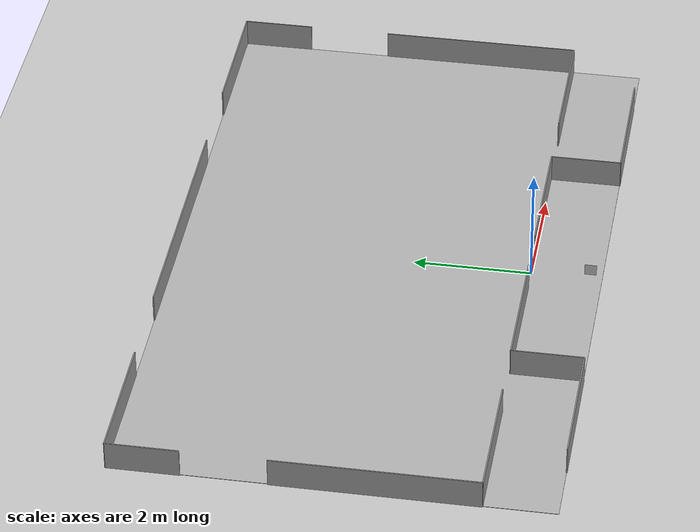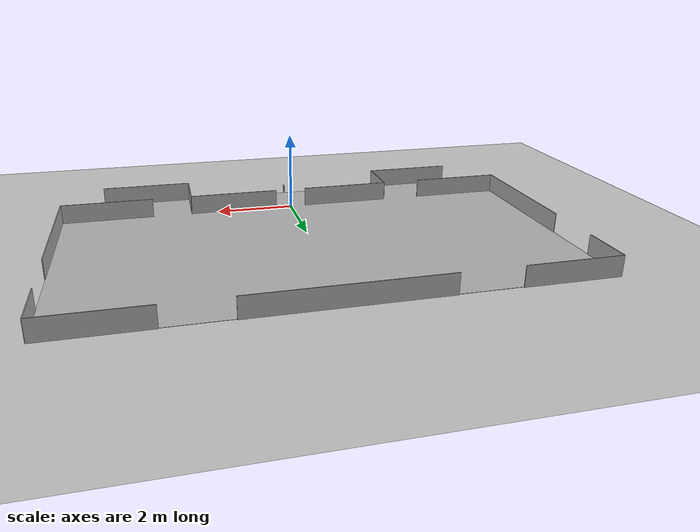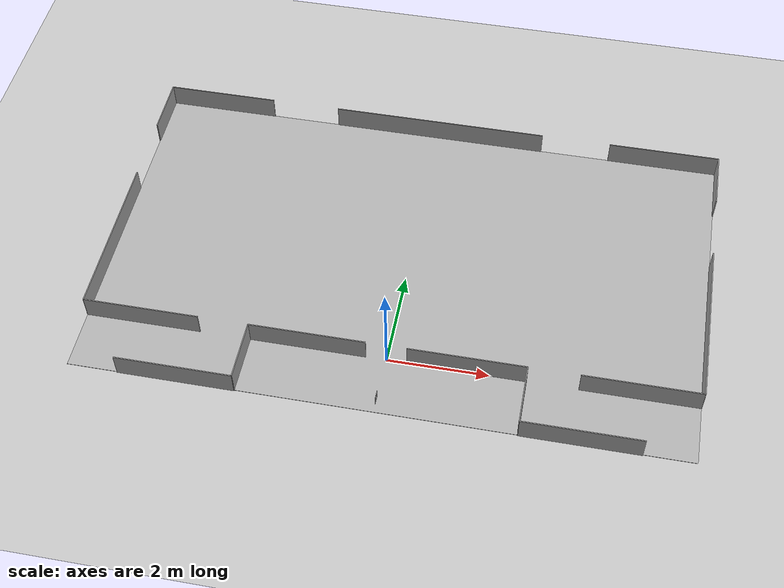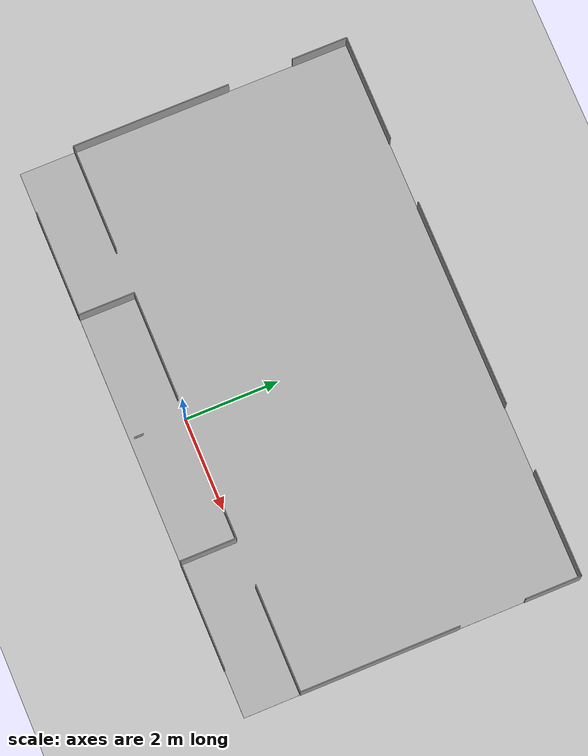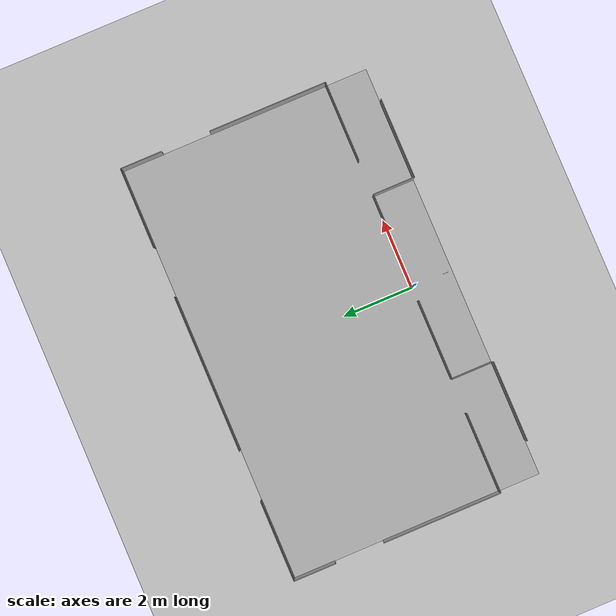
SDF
<sdf version="1.4">
 <world name="LLSF">
  <physics type="ode">
   <max_step_size>0.004</max_step_size>
   <real_time_factor>1</real_time_factor>
   <real_time_update_rate>300</real_time_update_rate>
  </physics>
  <include><uri>model://ground_plane</uri></include>
  <include><uri>model://sun</uri></include>
  <include><uri>model://german_open_field</uri></include>
  <include><name>tag_01</name><uri>model://tag</uri><pose>0 -1 0.2 0 0 0</pose></include>
  <include><name>tag_02</name><uri>model://tag</uri><pose>0 -1 0.2 0 0 0</pose></include>
  <include><name>tag_17</name><uri>model://tag</uri><pose>0 -1 0.2 0 0 0</pose></include>
  <include><name>tag_18</name><uri>model://tag</uri><pose>0 -1 0.2 0 0 0</pose></include>
  <include><name>tag_33</name><uri>model://tag</uri><pose>0 -1 0.2 0 0 0</pose></include>
  <include><name>tag_34</name><uri>model://tag</uri><pose>0 -1 0.2 0 0 0</pose></include>
  <include><name>tag_177</name><uri>model://tag</uri><pose>0 -1 0.2 0 0 0</pose></include>
  <include><name>tag_178</name><uri>model://tag</uri><pose>0 -1 0.2 0 0 0</pose></include>
  <include><name>tag_65</name><uri>model://tag</uri><pose>0 -1 0.2 0 0 0</pose></include>
  <include><name>tag_66</name><uri>model://tag</uri><pose>0 -1 0.2 0 0 0</pose></include>
  <include><name>tag_81</name><uri>model://tag</uri><pose>0 -1 0.2 0 0 0</pose></include>
  <include><name>tag_82</name><uri>model://tag</uri><pose>0 -1 0.2 0 0 0</pose></include>
  <include><name>tag_97</name><uri>model://tag</uri><pose>0 -1 0.2 0 0 0</pose></include>
  <include><name>tag_98</name><uri>model://tag</uri><pose>0 -1 0.2 0 0 0</pose></include>
  <include><name>tag_113</name><uri>model://tag</uri><pose>0 -1 0.2 0 0 0</pose></include>
  <include><name>tag_114</name><uri>model://tag</uri><pose>0 -1 0.2 0 0 0</pose></include>
  <include><name>tag_129</name><uri>model://tag</uri><pose>0 -1 0.2 0 0 0</pose></include>
  <include><name>tag_130</name><uri>model://tag</uri><pose>0 -1 0.2 0 0 0</pose></include>
  <include><name>tag_145</name><uri>model://tag</uri><pose>0 -1 0.2 0 0 0</pose></include>
  <include><name>tag_146</name><uri>model://tag</uri><pose>0 -1 0.2 0 0 0</pose></include>
  <include><name>tag_161</name><uri>model://tag</uri><pose>0 -1 0.2 0 0 0</pose></include>
  <include><name>tag_162</name><uri>model://tag</uri><pose>0 -1 0.2 0 0 0</pose></include>
  <include><name>tag_49</name><uri>model://tag</uri><pose>0 -1 0.2 0 0 0</pose></include>
  <include><name>tag_50</name><uri>model://tag</uri><pose>0 -1 0.2 0 0 0</pose></include>
  <plugin name="llsf_refbox_comm" filename="libllsf_refbox_comm.so"/>
  <plugin name="timesync" filename="libtimesync.so"/>
  <plugin name="mps_placement" filename="libmps_placement.so"/>
 </world>
</sdf>

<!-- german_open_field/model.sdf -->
<sdf version="1.5">
  <model name="German Open Logistics League Field">
    <pose>0 2.5 0 0 0 0</pose>
    <static>true</static>
    <link name="field">
      <pose>0 0 0.01 0 0 0</pose>
      <collision name="collision">
        <geometry>
          <plane>
            <normal>0 0 1</normal>
            <size>12 7</size>
          </plane>
        </geometry>
        <surface>
          <friction>
            <ode>
              <mu>100</mu>
              <mu2>50</mu2>
            </ode>
          </friction>
        </surface>
      </collision>
      <visual name="carpet">
        <pose>0 -0.1 0 0 0 0</pose>
        <cast_shadows>false</cast_shadows>
        <geometry>
          <plane>
            <normal>0 0 1</normal>
            <size>12 7.2</size>
          </plane>
        </geometry>
        <material>
          <script>
            <uri>model://german_open_field/materials/scripts/</uri>
            <uri>model://german_open_field/materials/textures/</uri>
            <name>Logistics_League_Field/Image</name>
          </script>
        </material>
      </visual>
    </link>

    <link name="wall_bottom_middle_left">
      <pose>-1.55 -2.5 0.25 0 0 1.570796327</pose>
      <visual name="wall_bottom_middle_left-visual">
        <geometry>
          <box>
			<size>.02 2.3 .5</size>
          </box>
        </geometry>
        <cast_shadows>false</cast_shadows>
        <material>
	  <script>
	    <uri>file://media/materials/scripts/gazebo.material</uri>
	    <name>Gazebo/Grey</name>
	  </script>
        </material>
      </visual>
      <collision name="wall_bottom_middle_left-collision">
        <geometry>
		    <box>
			  <size>.02 2.3 .5</size>
		    </box>
        </geometry>
      </collision>
    </link>

    <link name="wall_bottom_middle_left_down">
      <pose>-2.7 -3.1 0.25 0 0 0</pose>
      <visual name="wall_bottom_middle_left_down-visual">
        <geometry>
          <box>
			<size>.02 1.2 .5</size>
          </box>
        </geometry>
        <cast_shadows>false</cast_shadows>
        <material>
	  <script>
	    <uri>file://media/materials/scripts/gazebo.material</uri>
	    <name>Gazebo/Grey</name>
	  </script>
        </material>
      </visual>
      <collision name="wall_bottom_middle_left_down-collision">
        <geometry>
		    <box>
			  <size>.02 1.2 .5</size>
		    </box>
        </geometry>
      </collision>
    </link>

    <link name="wall_bottom_middle_left_outer">
      <pose>-3.85 -3.7 0.25 0 0 1.570796327</pose>
      <visual name="wall_bottom_middle_left_outer-visual">
        <geometry>
          <box>
			<size>.02 2.3 .5</size>
          </box>
        </geometry>
        <cast_shadows>false</cast_shadows>
        <material>
	  <script>
	    <uri>file://media/materials/scripts/gazebo.material</uri>
	    <name>Gazebo/Grey</name>
	  </script>
        </material>
      </visual>
      <collision name="wall_bottom_middle_left_outer-collision">
        <geometry>
		    <box>
			  <size>.02 2.3 .5</size>
		    </box>
        </geometry>
      </collision>
    </link>

    <link name="wall_bottom_left">
      <pose>-4.85 -2.5 0.25 0 0 1.570796327</pose>
      <visual name="wall_bottom_left-visual">
        <geometry>
          <box>
			<size>.02 2.3 .5</size>
          </box>
        </geometry>
        <cast_shadows>false</cast_shadows>
        <material>
	  <script>
	    <uri>file://media/materials/scripts/gazebo.material</uri>
	    <name>Gazebo/Grey</name>
	  </script>
        </material>
      </visual>
      <collision name="wall_bottom_left-collision">
        <geometry>
		    <box>
			  <size>.02 2.3 .5</size>
		    </box>
        </geometry>
      </collision>
    </link>

    <link name="wall_bottom_middle_right">
      <pose>1.55 -2.5 0.25 0 0 1.570796327</pose>
      <visual name="wall_bottom_middle_right-visual">
        <geometry>
          <box>
			<size>.02 2.3 .5</size>
          </box>
        </geometry>
        <cast_shadows>false</cast_shadows>
        <material>
	  <script>
	    <uri>file://media/materials/scripts/gazebo.material</uri>
	    <name>Gazebo/Grey</name>
	  </script>
        </material>
      </visual>
      <collision name="wall_bottom_middle_right-collision">
        <geometry>
		    <box>
			  <size>.02 2.3 .5</size>
		    </box>
        </geometry>
      </collision>
    </link>

    <link name="wall_bottom_middle_right_down">
      <pose>2.7 -3.1 0.25 0 0 0</pose>
      <visual name="wall_bottom_middle_right_down-visual">
        <geometry>
          <box>
			<size>.02 1.2 .5</size>
          </box>
        </geometry>
        <cast_shadows>false</cast_shadows>
        <material>
	  <script>
	    <uri>file://media/materials/scripts/gazebo.material</uri>
	    <name>Gazebo/Grey</name>
	  </script>
        </material>
      </visual>
      <collision name="wall_bottom_middle_right_down-collision">
        <geometry>
		    <box>
			  <size>.02 1.2 .5</size>
		    </box>
        </geometry>
      </collision>
    </link>

    <link name="wall_bottom_middle_right_outer">
      <pose>3.85 -3.7 0.25 0 0 1.570796327</pose>
      <visual name="wall_bottom_middle_right_outer-visual">
        <geometry>
          <box>
			<size>.02 2.3 .5</size>
          </box>
        </geometry>
        <cast_shadows>false</cast_shadows>
        <material>
	  <script>
	    <uri>file://media/materials/scripts/gazebo.material</uri>
	    <name>Gazebo/Grey</name>
	  </script>
        </material>
      </visual>
      <collision name="wall_bottom_middle_right_outer-collision">
        <geometry>
		    <box>
			  <size>.02 2.3 .5</size>
		    </box>
        </geometry>
      </collision>
    </link>

    <link name="wall_bottom_right">
      <pose>4.85 -2.5 0.25 0 0 1.570796327</pose>
      <visual name="wall_bottom_right-visual">
        <geometry>
          <box>
			<size>.02 2.3 .5</size>
          </box>
        </geometry>
        <cast_shadows>false</cast_shadows>
        <material>
	  <script>
	    <uri>file://media/materials/scripts/gazebo.material</uri>
	    <name>Gazebo/Grey</name>
	  </script>
        </material>
      </visual>
      <collision name="wall_bottom_right-collision">
        <geometry>
		    <box>
			  <size>.02 2.3 .5</size>
		    </box>
        </geometry>
      </collision>
    </link>

    <link name="wall_left_bottom">
      <pose>-6 -0.8 0.25 0 0 0</pose>
      <visual name="wall_left_bottom-visual">
        <geometry>
          <box>
			<size>.02 3.4 .5</size>
          </box>
        </geometry>
        <cast_shadows>false</cast_shadows>
        <material>
	  <script>
	    <uri>file://media/materials/scripts/gazebo.material</uri>
	    <name>Gazebo/Grey</name>
	  </script>
        </material>
      </visual>
      <collision name="wall_left_bottom-collision">
        <geometry>
		    <box>
			  <size>.02 3.4 .5</size>
		    </box>
        </geometry>
      </collision>
    </link>

    <link name="wall_left_top">
      <pose>-6 2.9 0.25 0 0 0</pose>
      <visual name="wall_left_top-visual">
        <geometry>
          <box>
			<size>.02 1.2 .5</size>
          </box>
        </geometry>
        <cast_shadows>false</cast_shadows>
        <material>
	  <script>
	    <uri>file://media/materials/scripts/gazebo.material</uri>
	    <name>Gazebo/Grey</name>
	  </script>
        </material>
      </visual>
      <collision name="wall_left_top-collision">
        <geometry>
		    <box>
			  <size>.02 1.2 .5</size>
		    </box>
        </geometry>
      </collision>
    </link>

    <link name="wall_right_bottom">
      <pose>6 -0.8 0.25 0 0 0</pose>
      <visual name="wall_right_bottom-visual">
        <geometry>
          <box>
			<size>.02 3.4 .5</size>
          </box>
        </geometry>
        <cast_shadows>false</cast_shadows>
        <material>
	  <script>
	    <uri>file://media/materials/scripts/gazebo.material</uri>
	    <name>Gazebo/Grey</name>
	  </script>
        </material>
      </visual>
      <collision name="wall_right_bottom-collision">
        <geometry>
		    <box>
			  <size>.02 3.4 .5</size>
		    </box>
        </geometry>
      </collision>
    </link>

    <link name="wall_right_top">
      <pose>6 2.9 0.25 0 0 0</pose>
      <visual name="wall_right_top-visual">
        <geometry>
          <box>
			<size>.02 1.2 .5</size>
          </box>
        </geometry>
        <cast_shadows>false</cast_shadows>
        <material>
	  <script>
	    <uri>file://media/materials/scripts/gazebo.material</uri>
	    <name>Gazebo/Grey</name>
	  </script>
        </material>
      </visual>
      <collision name="wall_right_top-collision">
        <geometry>
		    <box>
			  <size>.02 1.2 .5</size>
		    </box>
        </geometry>
      </collision>
    </link>

    <link name="wall_top_middle">
      <pose>0 3.5 0.25 0 0 1.570796327</pose>
      <visual name="wall_top_middle-visual">
        <geometry>
          <box>
			<size>.02 4.5 .5</size>
          </box>
        </geometry>
        <cast_shadows>false</cast_shadows>
        <material>
	  <script>
	    <uri>file://media/materials/scripts/gazebo.material</uri>
	    <name>Gazebo/Grey</name>
	  </script>
        </material>
      </visual>
      <collision name="wall_top_middle-collision">
        <geometry>
		    <box>
			  <size>.02 4.5 .5</size>
		    </box>
        </geometry>
      </collision>
    </link>

    <link name="wall_top_left">
      <pose>-4.85 3.5 0.25 0 0 1.570796327</pose>
      <visual name="wall_top_left-visual">
        <geometry>
          <box>
			<size>.02 2.3 .5</size>
          </box>
        </geometry>
        <cast_shadows>false</cast_shadows>
        <material>
	  <script>
	    <uri>file://media/materials/scripts/gazebo.material</uri>
	    <name>Gazebo/Grey</name>
	  </script>
        </material>
      </visual>
      <collision name="wall_top_left-collision">
        <geometry>
		    <box>
			  <size>.02 2.3 .5</size>
		    </box>
        </geometry>
      </collision>
    </link>

    <link name="wall_top_right">
      <pose>4.85 3.5 0.25 0 0 1.570796327</pose>
      <visual name="wall_top_right-visual">
        <geometry>
          <box>
			<size>.02 2.3 .5</size>
          </box>
        </geometry>
        <cast_shadows>false</cast_shadows>
        <material>
	  <script>
	    <uri>file://media/materials/scripts/gazebo.material</uri>
	    <name>Gazebo/Grey</name>
	  </script>
        </material>
      </visual>
      <collision name="wall_top_right-collision">
        <geometry>
		    <box>
			  <size>.02 2.3 .5</size>
		    </box>
        </geometry>
      </collision>
    </link>

  </model>
</sdf>

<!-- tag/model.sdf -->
<sdf version="1.4">
  <model name="tag">
    <static>false</static>
    <link name="link">
      <pose>0 0 0 1.57 0 1.57</pose>
      <gravity>false</gravity>
      <!-- White background for tag -->

      <visual name="tag_background">
        <cast_shadows>false</cast_shadows>
        <pose>0 0 0 0 0 0</pose>
        <geometry>
          <plane>
            <normal>0 0 1</normal>
            <size>0.2 0.2</size>
          </plane>
        </geometry>
	<material>
          <script>
            <uri>model://tag/materials/scripts</uri>
            <uri>model://tag/materials/textures</uri>
            <name>tag/empty</name>
          </script>
	</material>
      </visual>
      <!-- The visual tag pattern is changed by the plugin depending on the name of this model. So spawn it with the name tag_01 to let it have the patter with id 01. -->
      <visual name="pattern">
        <cast_shadows>false</cast_shadows>
        <pose>0 0 0.001 0 0 0</pose>
        <geometry>
          <plane>
            <normal>0 0 1</normal>
            <size>0.135 0.135</size>
          </plane>
        </geometry>
	<material>
          <script>
            <uri>model://tag/materials/scripts</uri>
            <uri>model://tag/materials/textures</uri>
            <name>tag/tag_01</name>
          </script>
	</material>
      </visual>
    </link>

    <!-- Plugin to create the right pattern and publish the position -->
    <plugin name="Tag" filename="libtag.so"/>
    <plugin name="GPS" filename="libgps.so"/>
  </model>
</sdf>
